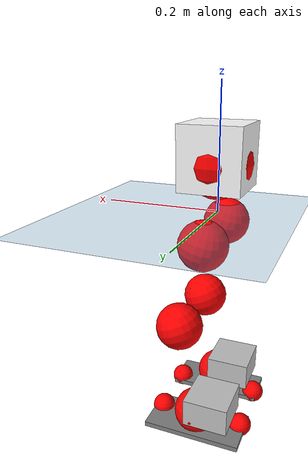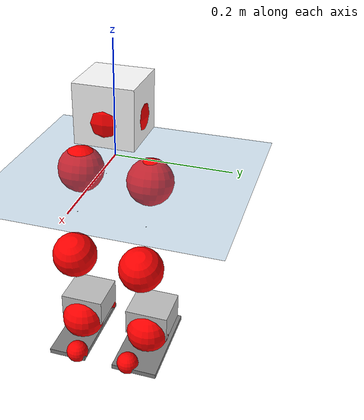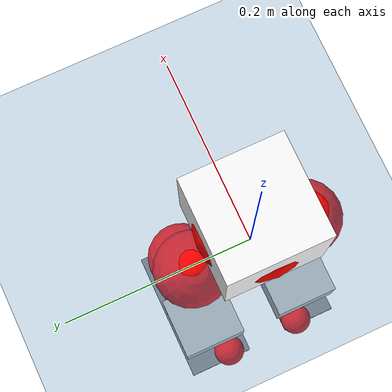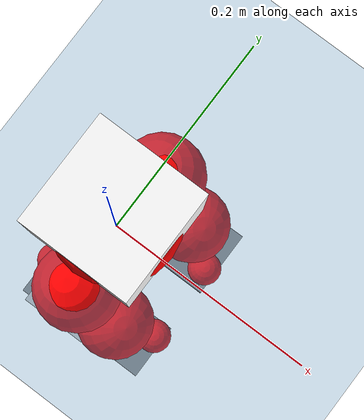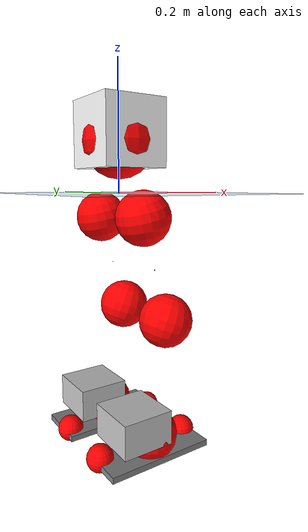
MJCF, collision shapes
<mujoco model="pi_12dof_release_v1">
  <compiler angle="radian" assetdir="assets" balanceinertia="true" inertiafromgeom="false"/>

  <option timestep="0.005" density="1.2" viscosity="2e-05"/>

  <size nkey="1"/>

  <visual>
    <quality shadowsize="8192"/>
    <map shadowclip="0.5"/>
  </visual>

  <default>
    <default class="/">
      <joint armature="0.01" damping="0.01" frictionloss="0.01"/>
      <geom contype="0" conaffinity="0" group="1" solref="-1000 -80"/>
      <site size="0.01 0.005 0.005" group="5"/>
      <general forcelimited="true" biastype="affine" gainprm="20" biasprm="0 -20 -0.5"/>
      <default class="foot">
        <geom size="0.0845 0.036 0.005" type="box" condim="6" group="4" priority="1" friction="0.9 0.2 0.2" solimp="0.015 1 0.005"/>
      </default>
      <default class="reward_collision_sphere">
        <geom group="5" rgba="1 0 0 1"/>
      </default>
    </default>
  </default>

  <asset>
    <texture type="skybox" colorspace="auto" name="//unnamed_texture_0" builtin="gradient" rgb1="0.95 0.95 0.95" rgb2="0.95 0.95 0.95" width="100" height="600"/>
    <texture type="2d" colorspace="auto" name="texplane" builtin="checker" rgb1="0.345 0.575 0.748" rgb2="0.345 0.575 0.748" markrgb="1 1 1" width="512" height="512"/>
    <material name="MatPlane" class="/" texture="texplane" texuniform="true" texrepeat="2 2" specular="0.9"/>
    <mesh name="baselink_1" class="/" file="baselink_1.STL"/>
    <mesh name="r_hip_pitch_link" class="/" file="r_hip_pitch_link.STL"/>
    <mesh name="r_hip_roll_link" class="/" file="r_hip_roll_link.STL"/>
    <mesh name="r_thigh_link" class="/" file="r_thigh_link.STL"/>
    <mesh name="r_calf_link" class="/" file="r_calf_link.STL"/>
    <mesh name="r_ankle_pitch_link" class="/" file="r_ankle_pitch_link.STL"/>
    <mesh name="r_ankle_roll_link" class="/" file="r_ankle_roll_link.STL"/>
    <mesh name="l_hip_pitch_link" class="/" file="l_hip_pitch_link.STL"/>
    <mesh name="l_hip_roll_link" class="/" file="l_hip_roll_link.STL"/>
    <mesh name="l_thigh_link" class="/" file="l_thigh_link.STL"/>
    <mesh name="l_calf_link" class="/" file="l_calf_link.STL"/>
    <mesh name="l_ankle_pitch_link" class="/" file="l_ankle_pitch_link.STL"/>
    <mesh name="l_ankle_roll_link" class="/" file="l_ankle_roll_link.STL"/>
  </asset>

  <worldbody>
    <geom name="floor" class="/" size="100 100 0.125" type="plane" group="0" material="MatPlane"/>
    <light name="toplight_shadow" class="/" pos="0 0 5" dir="0.0990148 0.0990148 -0.990148" type="directional" ambient="0.04 0.04 0.04" diffuse="0.55 0.55 0.55" specular="0.12 0.12 0.12"/>
    <light name="toplight_fill" class="/" pos="0 0 5" dir="0.0990148 0.0990148 -0.990148" type="directional" castshadow="false" ambient="0.04 0.04 0.04" diffuse="0.3 0.3 0.3" specular="0.08 0.08 0.08"/>
    <body name="trunk" pos="0.00181269 0.000693816 -0.0019634" quat="0.999999 -0.000936486 -0.000484436 0.000530252">
      <inertial pos="0.000525908 0.00109203 0.0468633" quat="0.696477 0.00598954 0.00987203 0.717487" mass="2.30719" diaginertia="0.0176886 0.00315446 0.00823323"/>
      <joint name="//unnamed_joint_0" type="free"/>
      <geom name="//unnamed_geom_1" class="/" type="mesh" density="0" rgba="1 1 1 1" mesh="baselink_1"/>
      <geom name="//unnamed_geom_2" class="/" size="0.0511461 0.0511461 0.0511461" pos="0 0 0.0911344" type="box" rgba="1 1 1 1"/>
      <geom name="//unnamed_geom_3" class="reward_collision_sphere" size="0.0562607" pos="0 0 0.0797426"/>
      <site name="imu" class="/" pos="0.00423316 0.0118126 0.0124481" size="0.0102292"/>
      <camera name="track" class="/" pos="0 -1.61523 0" quat="0.707107 0.707107 0 0" mode="trackcom"/>
      <camera name="ego_camera" class="/" pos="0.0841478 0 0.205052" quat="-0.5 -0.5 0.5 0.5"/>
      <body name="r_hip_pitch_link" pos="-0.00111356 -0.0180922 -0.035626" quat="0.992173 -0.00081531 -0.124871 0.000249336">
        <inertial pos="0.000709494 -0.0479951 0.00056687" quat="-0.0199038 0.704365 -0.0327598 0.708802" mass="0.384112" diaginertia="0.000196114 3.44286e-05 0.000159718"/>
        <joint name="r_hip_pitch_joint" class="/" pos="0 0 0" axis="0.00184202 -0.999903 0.0138281" range="-1.7925 1.23063" armature="0.0099338" damping="0.0262656" frictionloss="0.0116719"/>
        <geom name="//unnamed_geom_4" class="/" type="mesh" density="0" rgba="0.75294 0.75294 0.75294 1" mesh="r_hip_pitch_link"/>
        <geom name="//unnamed_geom_5" class="/" size="0.000511461 0.000511461 0.000511461" type="box" rgba="0.75294 0.75294 0.75294 1"/>
        <body name="r_hip_roll_link" pos="0.00263891 -0.0461358 0.00235004" quat="0.999999 -0.000928567 -0.000519895 0.000919183">
          <inertial pos="0.00124842 -0.00269809 -0.0718338" quat="0.705634 -0.0790963 -0.0831146 0.699226" mass="0.403836" diaginertia="0.000588236 9.13436e-05 0.00024257"/>
          <joint name="r_hip_roll_joint" class="/" pos="0 0 0" axis="-0.999908 -0.0126489 0.00495849" range="-0.120256 0.441104" armature="0.0095134" damping="0.0013007" frictionloss="0.0116295"/>
          <geom name="//unnamed_geom_6" class="/" type="mesh" density="0" rgba="0.75294 0.75294 0.75294 1" mesh="r_hip_roll_link"/>
          <geom name="//unnamed_geom_7" class="/" size="0.000511461 0.000511461 0.000511461" type="box" rgba="0.75294 0.75294 0.75294 1"/>
          <geom name="//unnamed_geom_8" class="reward_collision_sphere" size="0.0409169"/>
          <body name="r_thigh_link" pos="-0.0011209 -0.00225013 -0.0791114" quat="0.999999 -0.000387158 0.000187369 -0.00120447">
            <inertial pos="-0.00256552 -2.20963e-05 -0.0512971" quat="0.738702 0.674002 -0.00498463 -0.00385751" mass="0.120427" diaginertia="0.000219544 3.43101e-05 0.000114026"/>
            <joint name="r_thigh_joint" class="/" pos="0 0 0" axis="0.000535094 -0.000263499 -1" range="-0.357654 0.645258" armature="0.00906664" damping="0.00418909" frictionloss="0.00932254"/>
            <geom name="//unnamed_geom_9" class="/" type="mesh" density="0" rgba="0.75294 0.75294 0.75294 1" mesh="r_thigh_link"/>
            <geom name="//unnamed_geom_10" class="/" size="0.000511461 0.000511461 0.000511461" type="box" rgba="0.75294 0.75294 0.75294 1"/>
            <body name="r_calf_link" pos="-0.000871775 -0.00088703 -0.0825824" quat="0.947691 -0.000664891 0.319186 0.00117676">
              <inertial pos="0.00160699 -0.00347534 -0.0802903" quat="0.999921 0.00667704 0.00964507 0.00448776" mass="0.863236" diaginertia="0.00585555 0.00116434 0.000313696"/>
              <joint name="r_calf_joint" class="/" pos="0 0 0" axis="0.0115329 -0.999889 0.00946874" range="-1.60976 0.668124" armature="0.0106196" damping="0.00554803" frictionloss="0.01167"/>
              <geom name="//unnamed_geom_11" class="/" type="mesh" density="0" rgba="0.75294 0.75294 0.75294 1" mesh="r_calf_link"/>
              <geom name="//unnamed_geom_12" class="/" size="0.000511461 0.000511461 0.000511461" type="box" rgba="0.75294 0.75294 0.75294 1"/>
              <geom name="//unnamed_geom_13" class="reward_collision_sphere" size="0.0409169"/>
              <body name="r_ankle_pitch_link" pos="0.00148106 -0.0022492 -0.1593" quat="0.98007 -1.04665e-05 -0.198654 6.74663e-06">
                <inertial pos="0.0077589 7.99437e-05 0.000823314" quat="0.0125358 0.700799 -0.00166961 0.713247" mass="0.189555" diaginertia="0.000539233 7.36108e-05 0.000231642"/>
                <joint name="r_ankle_pitch_joint" class="/" pos="0 0 0" axis="-0.0105291 -0.999942 0.00236723" range="-1.26091 0.504015" armature="0.00992041" damping="0" frictionloss="0.0114871"/>
                <geom name="//unnamed_geom_14" class="/" type="mesh" density="0" rgba="0.75294 0.75294 0.75294 1" mesh="r_ankle_pitch_link"/>
                <geom name="//unnamed_geom_15" class="/" size="0.039894 0.0409169 0.025573" type="box" rgba="0.75294 0.75294 0.75294 1"/>
                <body name="r_ankle_roll_link" pos="0.0852903 -0.00070125 -0.00101963" quat="1 1.13966e-05 -3.31816e-05 6.00451e-05">
                  <inertial pos="-0.0273718 -0.00076921 -0.0161192" quat="0.565476 0.424858 0.441267 0.552282" mass="0.558031" diaginertia="0.00202133 0.000354718 0.000525758"/>
                  <joint name="r_ankle_roll_joint" class="/" pos="0 0 0" axis="-0.99994 -0.00596053 0.0091643" stiffness="0.00750766" range="-0.197431 0.136221" armature="0.0115128" damping="0.0133715" frictionloss="0.00998316"/>
                  <geom name="//unnamed_geom_16" class="/" type="mesh" density="0" rgba="0.75294 0.75294 0.75294 1" mesh="r_ankle_roll_link"/>
                  <geom name="//unnamed_geom_17" class="/" type="mesh" rgba="0.75294 0.75294 0.75294 1" mesh="r_ankle_roll_link"/>
                  <geom name="right_foot" class="foot" size="0.0852885 0.0354058 0.00457336" pos="-0.0572205 0 -0.0501239"/>
                  <geom name="//unnamed_geom_19" class="reward_collision_sphere" size="0.0409169" pos="-0.0560985 0 -0.0227836"/>
                  <geom name="//unnamed_geom_20" class="reward_collision_sphere" size="0.0204584" pos="0.0168296 0.0161523 -0.0455672"/>
                  <geom name="//unnamed_geom_21" class="reward_collision_sphere" size="0.0204584" pos="-0.134636 0.0161523 -0.0455672"/>
                  <site name="right_foot" class="foot" pos="-0.0572205 0 -0.0501239" size="0.0102292"/>
                </body>
              </body>
            </body>
          </body>
        </body>
      </body>
      <body name="l_hip_pitch_link" pos="0.0011817 0.0194368 -0.0397463" quat="0.992187 7.57772e-05 -0.124757 2.90121e-05">
        <inertial pos="0.00220948 0.0457812 -0.0030389" quat="-0.0380425 0.701393 0.0240402 0.711353" mass="0.426095" diaginertia="0.00022407 3.57466e-05 0.00019785"/>
        <joint name="l_hip_pitch_joint" class="/" pos="0 0 0" axis="0.00430692 0.999941 0.00995932" range="-1.22706 1.74617" armature="0.0102137" damping="0.0215208" frictionloss="0.0100995"/>
        <geom name="//unnamed_geom_22" class="/" type="mesh" density="0" rgba="0.75294 0.75294 0.75294 1" mesh="l_hip_pitch_link"/>
        <geom name="//unnamed_geom_23" class="/" size="0.000511461 0.000511461 0.000511461" type="box" rgba="0.75294 0.75294 0.75294 1"/>
        <body name="l_hip_roll_link" pos="0.000629955 0.0428402 0.00287243" quat="1 -0.000406431 0.000283305 -4.24425e-05">
          <inertial pos="-0.00205949 9.43316e-05 -0.070339" quat="0.698214 -0.0801102 -0.0787088 0.707026" mass="0.427705" diaginertia="0.000591872 9.44177e-05 0.000255308"/>
          <joint name="l_hip_roll_joint" class="/" pos="0 0 0" axis="-0.999977 0.00569994 0.00356767" range="-0.478598 0.173689" armature="0.0095209" damping="0.00623492" frictionloss="0.00975171"/>
          <geom name="//unnamed_geom_24" class="/" type="mesh" density="0" rgba="0.75294 0.75294 0.75294 1" mesh="l_hip_roll_link"/>
          <geom name="//unnamed_geom_25" class="/" size="0.000511461 0.000511461 0.000511461" type="box" rgba="0.75294 0.75294 0.75294 1"/>
          <geom name="//unnamed_geom_26" class="reward_collision_sphere" size="0.0409169"/>
          <body name="l_thigh_link" pos="0.000768948 -0.00062131 -0.0807244" quat="1 -4.47165e-05 -0.000153682 0.000207532">
            <inertial pos="-0.000465699 0.0006337 -0.0540661" quat="0.671872 0.740595 0.0095393 0.00405875" mass="0.121682" diaginertia="0.000217742 3.26537e-05 0.000109503"/>
            <joint name="l_thigh_joint" class="/" pos="0 0 0" axis="0.00713837 -0.00082564 -0.999974" stiffness="0.00778522" range="-0.603594 0.354538" armature="0.0112287" damping="0" frictionloss="0.0113835"/>
            <geom name="//unnamed_geom_27" class="/" type="mesh" density="0" rgba="0.75294 0.75294 0.75294 1" mesh="l_thigh_link"/>
            <geom name="//unnamed_geom_28" class="/" size="0.000511461 0.000511461 0.000511461" type="box" rgba="0.75294 0.75294 0.75294 1"/>
            <body name="l_calf_link" pos="0.00084558 -0.00193199 -0.0797103" quat="0.947969 0.000186869 0.318361 -0.000424951">
              <inertial pos="0.00253032 0.00519885 -0.0814959" quat="0.999902 0.00331883 -0.013586 0.00109131" mass="0.870283" diaginertia="0.00620391 0.00119781 0.000337606"/>
              <joint name="l_calf_joint" class="/" pos="0 0 0" axis="-0.00231139 0.99995 -0.00975549" range="-0.628668 1.60287" armature="0.0104143" damping="0.00896912" frictionloss="0.0088472"/>
              <geom name="//unnamed_geom_29" class="/" type="mesh" density="0" rgba="0.75294 0.75294 0.75294 1" mesh="l_calf_link"/>
              <geom name="//unnamed_geom_30" class="/" size="0.000511461 0.000511461 0.000511461" type="box" rgba="0.75294 0.75294 0.75294 1"/>
              <geom name="//unnamed_geom_31" class="reward_collision_sphere" size="0.0409169"/>
              <body name="l_ankle_pitch_link" pos="-0.000143634 0.00165273 -0.161274" quat="0.98007 0.000111659 -0.198654 -7.77075e-06">
                <inertial pos="0.00656835 -0.000518109 -7.92704e-05" quat="-0.000542863 0.70615 0.00390012 0.708051" mass="0.181788" diaginertia="0.000552705 7.87011e-05 0.000229444"/>
                <joint name="l_ankle_pitch_joint" class="/" pos="0 0 0" axis="-8.55104e-05 0.999999 -0.00103965" range="-0.502324 1.27877" armature="0.010164" damping="0.00381167" frictionloss="0.0111218"/>
                <geom name="//unnamed_geom_32" class="/" type="mesh" density="0" rgba="0.75294 0.75294 0.75294 1" mesh="l_ankle_pitch_link"/>
                <geom name="//unnamed_geom_33" class="/" size="0.039894 0.0409169 0.025573" type="box" rgba="0.75294 0.75294 0.75294 1"/>
                <body name="l_ankle_roll_link" pos="0.0837809 0.000547537 0.00214135" quat="1 0.000238662 -0.000270231 0.000491389">
                  <inertial pos="-0.0300324 -0.00111202 -0.0166134" quat="0.552238 0.434638 0.430697 0.566236" mass="0.561956" diaginertia="0.002049 0.000356817 0.000564055"/>
                  <joint name="l_ankle_roll_joint" class="/" pos="0 0 0" axis="-0.999943 0.00340228 0.0100887" range="-0.14635 0.191124" armature="0.00983175" damping="0.0244621" frictionloss="0.0094989"/>
                  <geom name="//unnamed_geom_34" class="/" type="mesh" density="0" rgba="0.75294 0.75294 0.75294 1" mesh="l_ankle_roll_link"/>
                  <geom name="//unnamed_geom_35" class="/" type="mesh" rgba="0.75294 0.75294 0.75294 1" mesh="l_ankle_roll_link"/>
                  <geom name="left_foot" class="foot" size="0.0880998 0.0425338 0.00455223" pos="-0.0572205 0 -0.0501239"/>
                  <geom name="//unnamed_geom_37" class="reward_collision_sphere" size="0.0409169" pos="-0.0560985 0 -0.0227836"/>
                  <geom name="//unnamed_geom_38" class="reward_collision_sphere" size="0.0204584" pos="0.0168296 -0.0161523 -0.0455672"/>
                  <geom name="//unnamed_geom_39" class="reward_collision_sphere" size="0.0204584" pos="-0.134636 -0.0161523 -0.0455672"/>
                  <site name="left_foot" class="foot" pos="-0.0572205 0 -0.0501239" size="0.0102292"/>
                </body>
              </body>
            </body>
          </body>
        </body>
      </body>
    </body>
  </worldbody>

  <contact>
    <pair class="/" geom1="floor" geom2="right_foot" name="//unnamed_contact_1"/>
    <pair class="/" geom1="floor" geom2="left_foot" name="//unnamed_contact_0"/>
  </contact>

  <actuator>
    <general name="r_hip_pitch_joint" class="/" joint="r_hip_pitch_joint" forcerange="-21.157 21.157" gainprm="20.457" biasprm="0 -20.457 -0.539017"/>
    <general name="r_hip_roll_joint" class="/" joint="r_hip_roll_joint" forcerange="-23.5931 23.5931" gainprm="20.457" biasprm="0 -20.457 -0.539017"/>
    <general name="r_thigh_joint" class="/" joint="r_thigh_joint" forcerange="-22.274 22.274" gainprm="20.457" biasprm="0 -20.457 -0.539017"/>
    <general name="r_calf_joint" class="/" joint="r_calf_joint" forcerange="-23.0449 23.0449" gainprm="20.457" biasprm="0 -20.457 -0.539017"/>
    <general name="r_ankle_pitch_joint" class="/" joint="r_ankle_pitch_joint" forcerange="-20.8751 20.8751" gainprm="20.457" biasprm="0 -20.457 -0.539017"/>
    <general name="r_ankle_roll_joint" class="/" joint="r_ankle_roll_joint" forcerange="-19.482 19.482" gainprm="20.457" biasprm="0 -20.457 -0.539017"/>
    <general name="l_hip_pitch_joint" class="/" joint="l_hip_pitch_joint" forcerange="-21.3018 21.3018" gainprm="20.457" biasprm="0 -20.457 -0.539017"/>
    <general name="l_hip_roll_joint" class="/" joint="l_hip_roll_joint" forcerange="-19.6704 19.6704" gainprm="20.457" biasprm="0 -20.457 -0.539017"/>
    <general name="l_thigh_joint" class="/" joint="l_thigh_joint" forcerange="-22.3339 22.3339" gainprm="20.457" biasprm="0 -20.457 -0.539017"/>
    <general name="l_calf_joint" class="/" joint="l_calf_joint" forcerange="-21.4598 21.4598" gainprm="20.457" biasprm="0 -20.457 -0.539017"/>
    <general name="l_ankle_pitch_joint" class="/" joint="l_ankle_pitch_joint" forcerange="-23.2618 23.2618" gainprm="20.457" biasprm="0 -20.457 -0.539017"/>
    <general name="l_ankle_roll_joint" class="/" joint="l_ankle_roll_joint" forcerange="-20.9972 20.9972" gainprm="20.457" biasprm="0 -20.457 -0.539017"/>
  </actuator>

  <sensor>
    <gyro site="imu" name="imu_angular_velocity"/>
    <velocimeter site="imu" name="imu_linear_velocity"/>
    <framelinvel objtype="site" objname="left_foot" name="left_foot_global_linear_velocity"/>
    <framelinvel objtype="site" objname="right_foot" name="right_foot_global_linear_velocity"/>
  </sensor>

  <keyframe>
    <key name="home" qpos="0 0 0.291 1 0 0 0 0.4 0 0 -0.8 0.4 0 -0.4 0 0 0.8 -0.4 0"/>
  </keyframe>
</mujoco>
